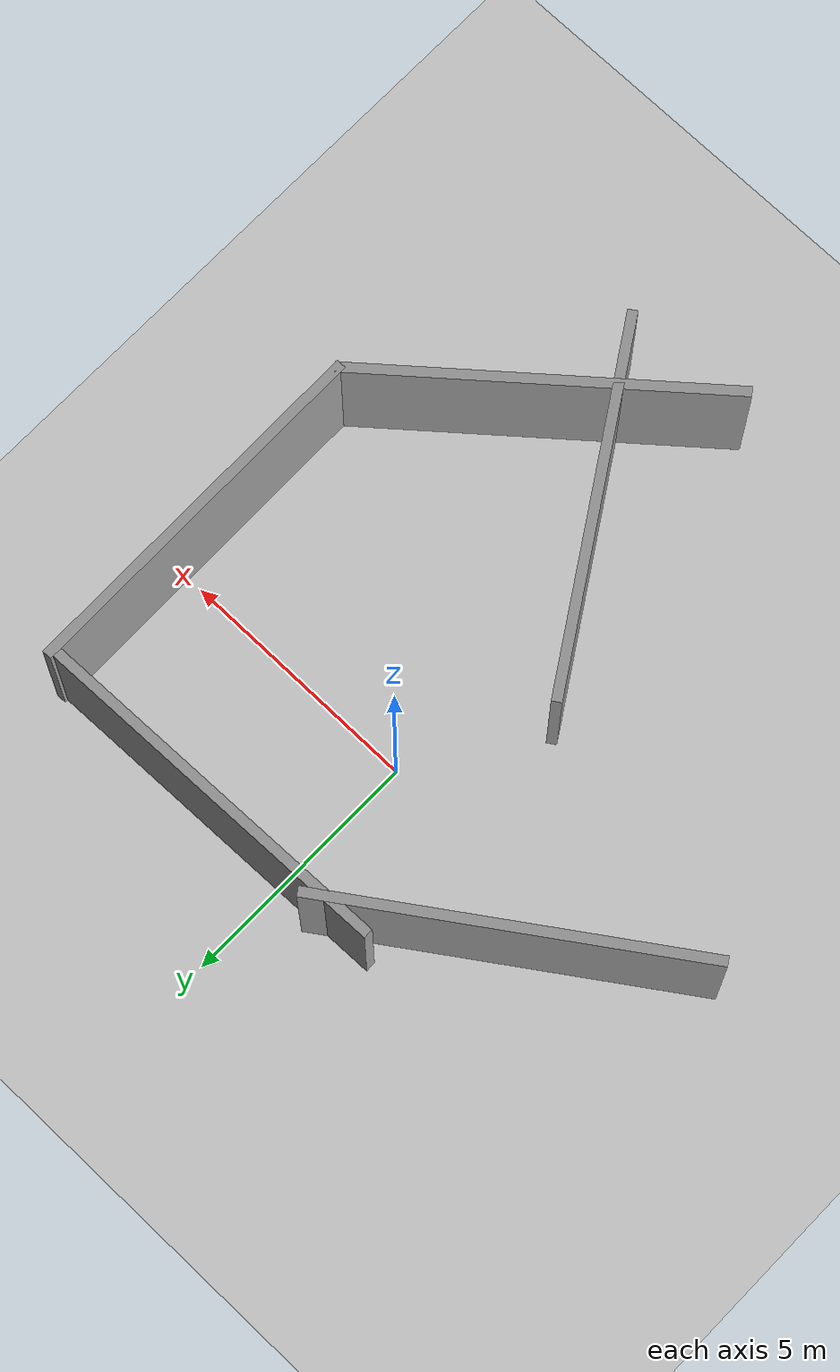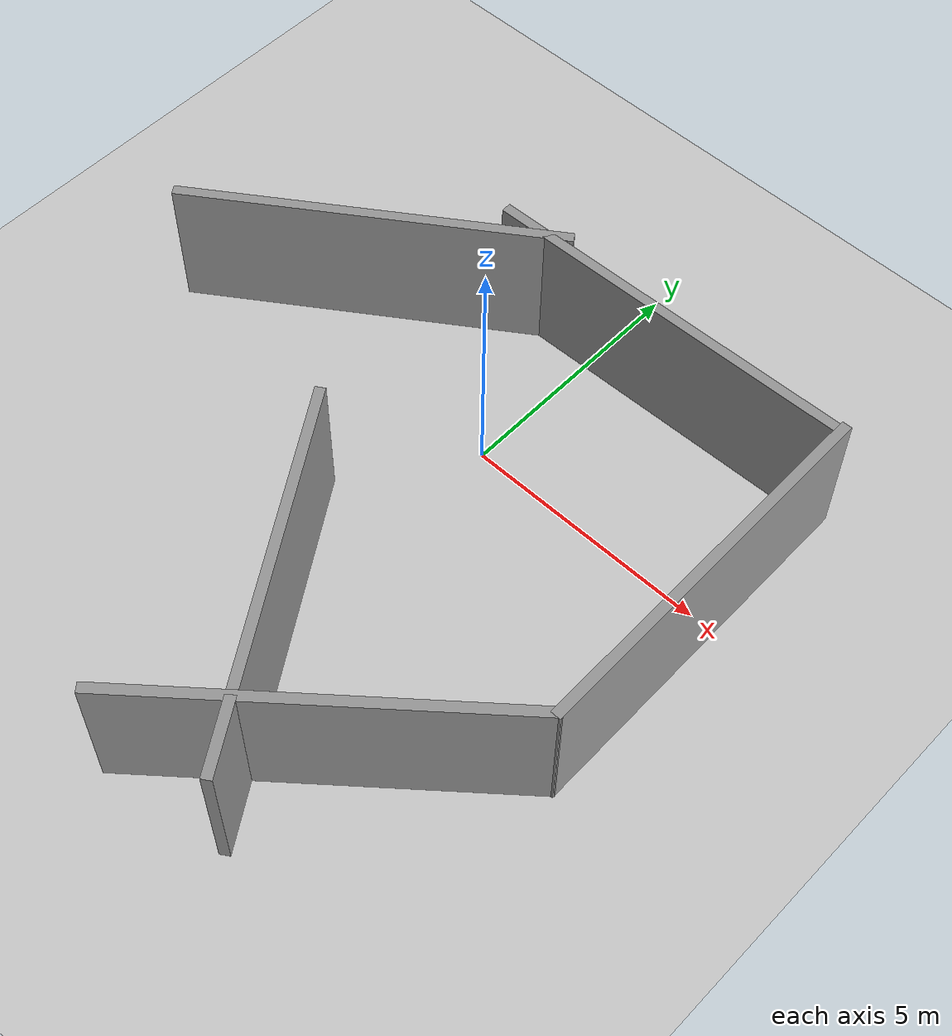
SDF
<sdf version="1.4">
 <world name="default">
  <light name="sun" type="directional">
   <pose>0 0 10 0 -0 0</pose>
   <diffuse>0.8 0.8 0.8 1</diffuse>
   <specular>0.2 0.2 0.2 1</specular>
   <attenuation>
    <range>1000</range>
    <constant>0.9</constant>
    <linear>0.01</linear>
    <quadratic>0.001</quadratic>
   </attenuation>
   <direction>-0.5 0.1 -0.9</direction>
  </light>
  <model name="ground_plane">
   <static>1</static>
   <link name="link">
    <collision name="collision">
     <geometry><plane><normal>0 0 1</normal><size>100 100</size></plane></geometry>
     <surface><friction><ode><mu>100</mu><mu2>50</mu2></ode></friction></surface>
    </collision>
    <visual name="visual">
     <cast_shadows>0</cast_shadows>
     <geometry><plane><normal>0 0 1</normal><size>100 100</size></plane></geometry>
     <material>
      <script><uri>file://media/materials/scripts/gazebo.material</uri><name>Gazebo/Grey</name></script>
     </material>
    </visual>
    <velocity_decay><linear>0</linear><angular>0</angular></velocity_decay>
   </link>
  </model>
  <physics type="ode">
   <max_step_size>0.01</max_step_size>
   <real_time_factor>1</real_time_factor>
   <real_time_update_rate>100</real_time_update_rate>
   <gravity>0 0 -9.8</gravity>
  </physics>
  <scene><ambient>0.4 0.4 0.4 1</ambient><background>0.7 0.7 0.7 1</background><shadows>1</shadows></scene>
  <model name="grey_wall_0">
   <static>1</static>
   <link name="link">
    <pose>0 0 1.4 0 -0 0</pose>
    <collision name="collision"><geometry><box><size>7.5 0.2 2.8</size></box></geometry></collision>
    <visual name="visual">
     <cast_shadows>0</cast_shadows>
     <geometry><box><size>7.5 0.2 2.8</size></box></geometry>
     <material>
      <script>
       <uri>model://grey_wall/materials/scripts</uri>
       <uri>model://grey_wall/materials/textures</uri>
       <name>vrc/grey_wall</name>
      </script>
     </material>
    </visual>
    <velocity_decay><linear>0</linear><angular>0</angular></velocity_decay>
   </link>
   <pose>1.57824 3 0 0 0 -3.12</pose>
  </model>
  <model name="grey_wall_1">
   <static>1</static>
   <link name="link">
    <pose>0 0 1.4 0 -0 0</pose>
    <collision name="collision"><geometry><box><size>7.5 0.2 2.8</size></box></geometry></collision>
    <visual name="visual">
     <cast_shadows>0</cast_shadows>
     <geometry><box><size>7.5 0.2 2.8</size></box></geometry>
     <material>
      <script>
       <uri>model://grey_wall/materials/scripts</uri>
       <uri>model://grey_wall/materials/textures</uri>
       <name>vrc/grey_wall</name>
      </script>
     </material>
    </visual>
    <velocity_decay><linear>0</linear><angular>0</angular></velocity_decay>
   </link>
   <pose>5.41756 -0.506321 0 0 0 -1.56</pose>
  </model>
  <model name="grey_wall_2">
   <static>1</static>
   <link name="link">
    <pose>0 0 1.4 0 -0 0</pose>
    <collision name="collision"><geometry><box><size>7.5 0.2 2.8</size></box></geometry></collision>
    <visual name="visual">
     <cast_shadows>0</cast_shadows>
     <geometry><box><size>7.5 0.2 2.8</size></box></geometry>
     <material>
      <script>
       <uri>model://grey_wall/materials/scripts</uri>
       <uri>model://grey_wall/materials/textures</uri>
       <name>vrc/grey_wall</name>
      </script>
     </material>
    </visual>
    <velocity_decay><linear>0</linear><angular>0</angular></velocity_decay>
   </link>
   <pose>2.64206 -6.55579 0 0 0 -2.44</pose>
  </model>
  <model name="grey_wall_3">
   <static>1</static>
   <link name="link">
    <pose>0 0 1.4 0 -0 0</pose>
    <collision name="collision"><geometry><box><size>7.5 0.2 2.8</size></box></geometry></collision>
    <visual name="visual">
     <cast_shadows>0</cast_shadows>
     <geometry><box><size>7.5 0.2 2.8</size></box></geometry>
     <material>
      <script>
       <uri>model://grey_wall/materials/scripts</uri>
       <uri>model://grey_wall/materials/textures</uri>
       <name>vrc/grey_wall</name>
      </script>
     </material>
    </visual>
    <velocity_decay><linear>0</linear><angular>0</angular></velocity_decay>
   </link>
   <pose>0.365084 -5.493 0 0 0 -1</pose>
  </model>
  <model name="grey_wall_4">
   <static>1</static>
   <link name="link">
    <pose>0 0 1.4 0 -0 0</pose>
    <collision name="collision"><geometry><box><size>7.5 0.2 2.8</size></box></geometry></collision>
    <visual name="visual">
     <cast_shadows>0</cast_shadows>
     <geometry><box><size>7.5 0.2 2.8</size></box></geometry>
     <material>
      <script>
       <uri>model://grey_wall/materials/scripts</uri>
       <uri>model://grey_wall/materials/textures</uri>
       <name>vrc/grey_wall</name>
      </script>
     </material>
    </visual>
    <velocity_decay><linear>0</linear><angular>0</angular></velocity_decay>
   </link>
   <pose>-3.86275 1.10811 0 0 -0 0.6</pose>
  </model>
 </world>
</sdf>
